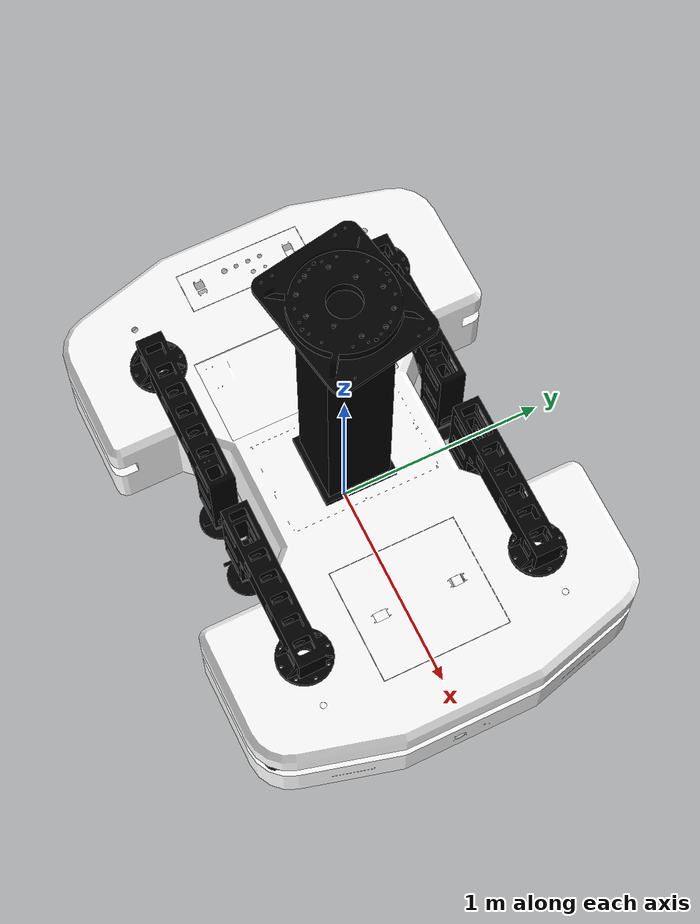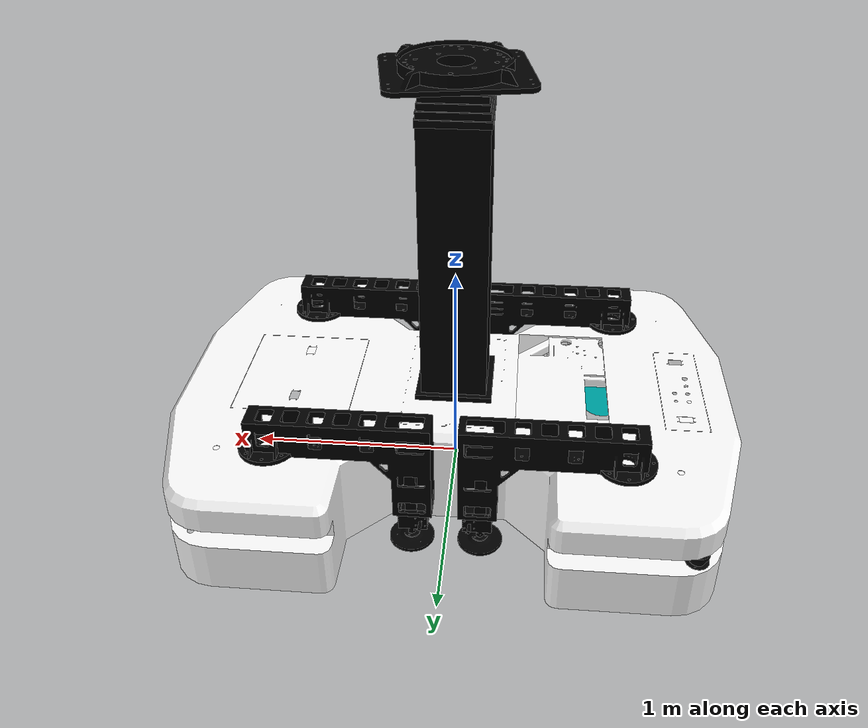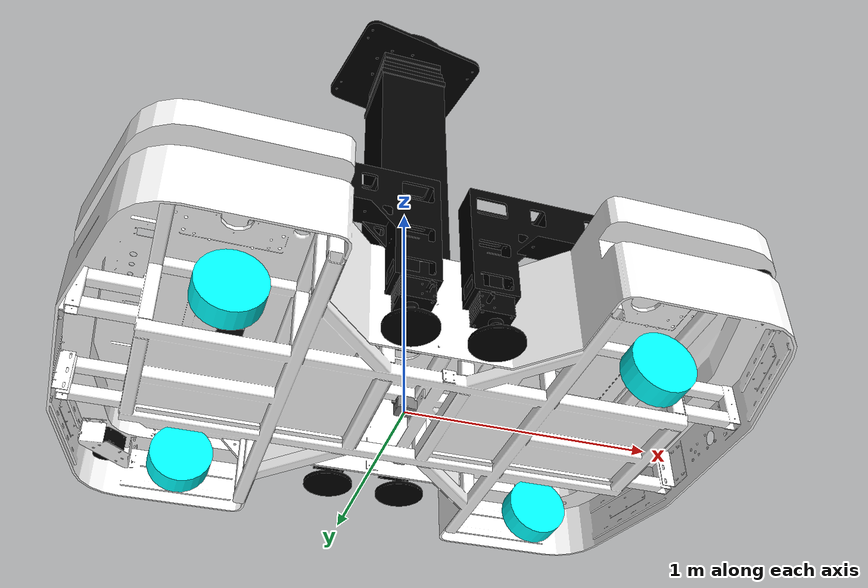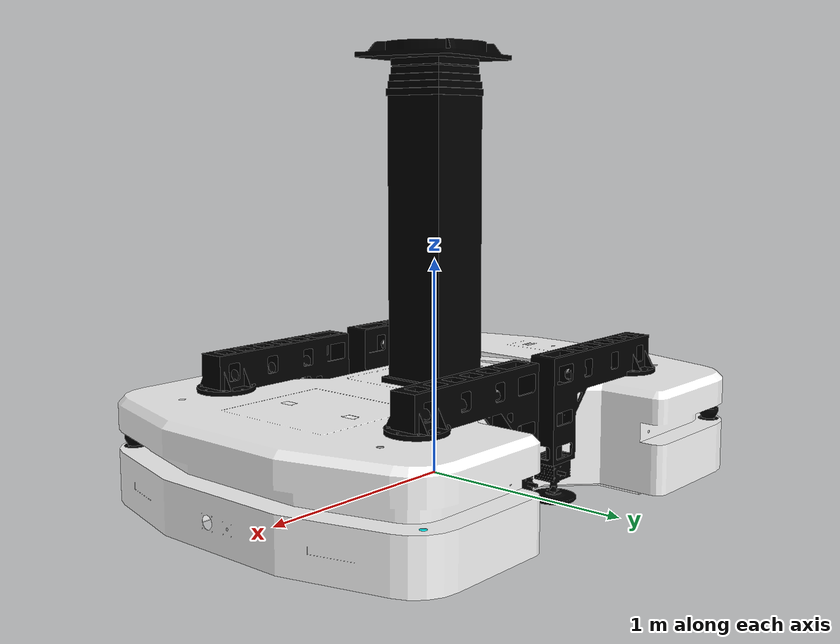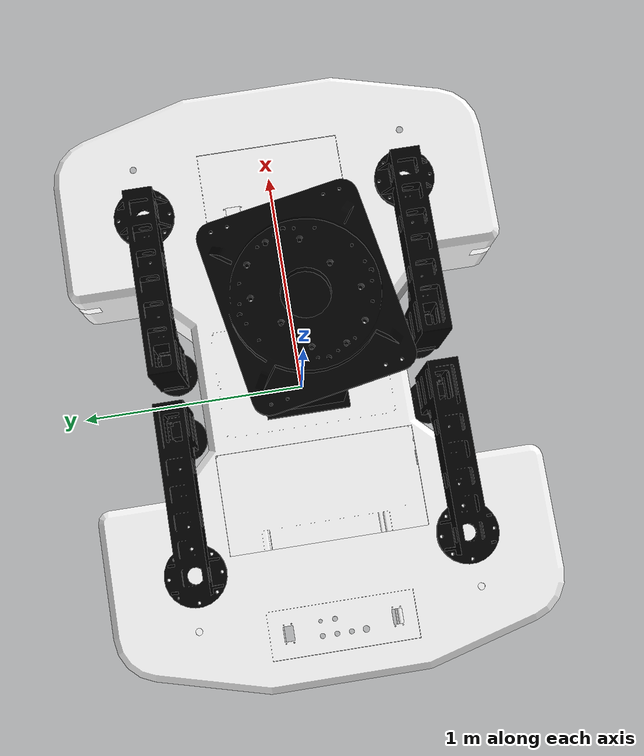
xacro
<?xml version="1.0"?>

<robot name="agv" xmlns:xacro="http://ros.org/wiki/xacro" >

    <xacro:include filename="$(find lunarPrinter)/urdf/agv/agv.gazebo.xacro" />

    <!-- 构建车体 -->
    <link name="agv_base_link">
        <inertial>
            <origin xyz="-0.0149529928295683 -4.94322252418334E-06 0.222184832094901" rpy="0 0 0" />
            <mass value="0.00519383596577394" />
            <inertia
        		ixx="0.00110386178303131"
                ixy="-0.000000315927825227971"
                ixz="-0.000000344955769853279"
                iyy="0.00133908938189479"
                iyz="0.00000000418959728531496"
                izz="0.239374249509396" />
        </inertial>

        <visual>
            <origin xyz="0 0 0" rpy="0 0 0" />
            <geometry>
        	    <mesh filename="package://lunarPrinter/meshes/agv/base_zhijia.STL" />
      		</geometry>
            <material name="While">
                <color rgba="1 1 1 0.95" />
            </material>
        </visual>

        <collision>
            <origin xyz="0 0 0" rpy="0 0 0" />
            <geometry>
                <mesh filename="package://lunarPrinter/meshes/agv/base_zhijia.STL" />

            </geometry>
        </collision>
    </link>

    <!-- 设置关节坐标系 -->

    <link name="agv_base_waike">
        <inertial>
            <origin xyz="-0.0149529928295683 -4.94322252418334E-06 0.222184832094901" rpy="0 0 0" />
            <mass value="0.001" />
            <inertia
        		ixx="0.0001" ixy="0" ixz="0" iyy="0.0001" iyz="0" izz="0.001" />
        </inertial>

        <visual>
            <origin xyz="0 0 0" rpy="0 0 0" />
            <geometry>
        	    <mesh filename="package://lunarPrinter/meshes/agv/base_waike.STL" />
      		</geometry>
            <material name="While">
                <color rgba="1 1 1 0.95" />
            </material>
        </visual>

        <collision>
            <origin xyz="0 0 0" rpy="0 0 0" />
            <geometry>
                <mesh filename="package://lunarPrinter/meshes/agv/base_waike.STL" />

            </geometry>
        </collision>
    </link>

    <!-- 设置关节坐标系 -->
    <joint name="agv_base_waike_joint" type="fixed">
        <parent link="agv_base_link" />
        <child link="agv_base_waike" />
        <origin rpy="0 0 0" xyz="0 0 0" />
    </joint>

    <!--构建车轮-->

    <!--舵轮基座-->
    <link name="steering_1_link">
        <inertial>
      		<origin xyz="0 0 0" rpy="0 0 0" />
      		<mass value="0.1" />
      		<inertia ixx="0.0001" ixy="0" ixz="0" iyy="0.0001" iyz="0" izz="0.001" />
    	</inertial>
    </link>
    <joint name="steering_1_joint" type="revolute">
        <origin xyz="0.762 0.56625 -0.01942" rpy="0 0 0" />
        <parent link="agv_base_link" />
        <child link="steering_1_link" />
        <axis xyz="0 0 1" />
        <limit lower="-3.14159265" upper="3.14159265" effort="5" velocity="1.5708" />
    </joint>

    <link name="steering_2_link">
        <inertial>
      		<origin xyz="0 0 0" rpy="0 0 0" />
      		<mass value="0.1" />
      		<inertia ixx="0.0001" ixy="0" ixz="0" iyy="0.0001" iyz="0" izz="0.001" />
    	</inertial>
    </link>
    <joint name="steering_2_joint" type="revolute">
        <origin xyz="0.762 -0.56625 -0.01942" rpy="0 0 0" />
        <parent link="agv_base_link" />
        <child link="steering_2_link" />
        <axis xyz="0 0 1" />
        <limit lower="-3.14159265" upper="3.14159265" effort="5" velocity="1.5708" />
    </joint>

    <link name="steering_3_link">
        <inertial>
      		<origin xyz="0 0 0" rpy="0 0 0" />
      		<mass value="0.1" />
      		<inertia ixx="0.0001" ixy="0" ixz="0" iyy="0.0001" iyz="0" izz="0.001" />
    	</inertial>
    </link>
    <joint name="steering_3_joint" type="revolute">
        <origin xyz="-0.762 0.56625 -0.01942" rpy="0 0 0" />
        <parent link="agv_base_link" />
        <child link="steering_3_link" />
        <axis xyz="0 0 1" />
        <limit lower="-3.14159265" upper="3.14159265" effort="5" velocity="1.5708" />
    </joint>

    <link name="steering_4_link">
        <inertial>
      		<origin xyz="0 0 0" rpy="0 0 0" />
      		<mass value="0.1" />
      		<inertia ixx="0.0001" ixy="0" ixz="0" iyy="0.0001" iyz="0" izz="0.001" />
    	</inertial>
    </link>
    <joint name="steering_4_joint" type="revolute">
        <origin xyz="-0.762 -0.56625 -0.01942" rpy="0 0 0" />
        <parent link="agv_base_link" />
        <child link="steering_4_link" />
        <axis xyz="0 0 1" />
        <limit lower="-3.14159265" upper="3.14159265" effort="5" velocity="1.5708" />
    </joint>

    <!-- 构建左前轮 -->
    <link name="front_left_wheel_link">
        <inertial>
      		<origin xyz="0 0 0" rpy="0 0 0" />
      		<mass value="1" />
      		<inertia ixx="0.0001" ixy="0" ixz="0" iyy="0.0001" iyz="0" izz="0.001" />
    	</inertial>

        <visual>
            <origin xyz="0 0 0" rpy="0 0 0" />
            <geometry>
                <cylinder length="0.1" radius="0.125" />
            </geometry>
            <material name="Cyan">
                <color rgba="0 1 1 0.95" />
            </material>
        </visual>

        <collision>
            <origin xyz="0 0 0" rpy="0 0 0" />
            <geometry>
                <cylinder length="0.1" radius="0.125" />
            </geometry>
        </collision>
    </link>

    <!-- 左前轮关节坐标系 -->
    <joint name="wheel_1_joint" type="continuous">
        <origin xyz="0 0 0" rpy="-1.5708 0 0" />
        <parent link="steering_1_link" />
        <child link="front_left_wheel_link" />
        <axis xyz="0 0 1" />
    </joint>

    <!-- 构建右前轮 -->
    <link name="front_right_wheel_link">
        <inertial>
      		<origin xyz="0 0 0" rpy="0 0 0" />
      		<mass value="1" />
      		<inertia ixx="0.0001" ixy="0" ixz="0" iyy="0.0001" iyz="0" izz="0.001" />
    	</inertial>

        <visual>
            <origin xyz="0 0 0" rpy="0 0 0" />
            <geometry>
                <cylinder length="0.1" radius="0.125" />
            </geometry>
            <material name="Cyan">
                <color rgba="0 1 1 0.95" />
            </material>
        </visual>

        <collision>
            <origin xyz="0 0 0" rpy="0 0 0" />
            <geometry>
                <cylinder length="0.1" radius="0.125" />
            </geometry>
        </collision>
    </link>

    <!-- 右前轮关节坐标系 -->
    <joint name="wheel_2_joint" type="continuous">
        <origin xyz="0 0 0" rpy="1.5708 0 0" />
        <parent link="steering_2_link" />
        <child link="front_right_wheel_link" />
        <axis xyz="0 0 1" />
    </joint>

    <!-- 构建左后轮 -->
    <link name="back_left_wheel_link">
        <inertial>
      		<origin xyz="0 0 0" rpy="0 0 0" />
      		<mass value="1" />
      		<inertia ixx="0.0001" ixy="0" ixz="0" iyy="0.0001" iyz="0" izz="0.001" />
    	</inertial>

        <visual>
            <origin xyz="0 0 0" rpy="0 0 0" />
            <geometry>
                <cylinder length="0.1" radius="0.125" />
            </geometry>
            <material name="Cyan">
                <color rgba="0 1 1 0.95" />
            </material>
        </visual>

        <collision>
            <origin xyz="0 0 0" rpy="0 0 0" />
            <geometry>
                <cylinder length="0.1" radius="0.125" />
            </geometry>
        </collision>
    </link>

    <!-- 左后轮关节坐标系 -->
    <joint name="wheel_3_joint" type="continuous">
        <origin xyz="0 0 0" rpy="-1.5708 0 0" />
        <parent link="steering_3_link" />
        <child link="back_left_wheel_link" />
        <axis xyz="0 0 1" />
    </joint>

    <!-- 构建右后轮 -->
    <link name="back_right_wheel_link">
        <inertial>
      		<origin xyz="0 0 0" rpy="0 0 0" />
      		<mass value="1" />
      		<inertia ixx="0.0001" ixy="0" ixz="0" iyy="0.0001" iyz="0" izz="0.001" />
    	</inertial>

        <visual>
            <origin xyz="0 0 0" rpy="0 0 0" />
            <geometry>
                <cylinder length="0.1" radius="0.125" />
            </geometry>
            <material name="Cyan">
                <color rgba="0 1 1 0.95" />
            </material>
        </visual>

        <collision>
            <origin xyz="0 0 0" rpy="0 0 0" />
            <geometry>
                <cylinder length="0.1" radius="0.125" />
            </geometry>
        </collision>
    </link>

    <!-- 左后轮关节坐标系 -->
    <joint name="wheel_4_joint" type="continuous">
        <origin xyz="0 0 0" rpy="1.5708 0 0" />
        <parent link="steering_4_link" />
        <child link="back_right_wheel_link" />
        <axis xyz="0 0 1" />
    </joint>

    <!-- 构建前雷达-->
    <link name="front_lidar_link">
        <inertial>
      		<origin xyz="0 0 0" rpy="0 0 0" />
      		<mass value="1" />
      		<inertia ixx="0.0001" ixy="0" ixz="0" iyy="0.0001" iyz="0" izz="0.001" />
    	</inertial>

        <visual>
            <origin xyz="0 0 0" rpy="0 0 0" />
            <geometry>
                <mesh
                filename="package://lunarPrinter/meshes/agv/front_lidar_link.STL" />
            </geometry>
            <material name="Black">
                <color rgba="0 0 0 0.95" />
            </material>
        </visual>

        <collision>
            <origin xyz="0 0 0" rpy="0 0 0" />
            <geometry>
                <mesh
                filename="package://lunarPrinter/meshes/agv/front_lidar_link.STL" />
            </geometry>
        </collision>
    </link>

    <!-- 前雷达坐标系 -->
    <joint name="front_lidar_joint" type="fixed">
        <origin xyz="1.0527 -0.84887 0.24279" rpy="0 0 0" />
        <parent link="agv_base_link" />
        <child link="front_lidar_link" />
        <axis xyz="0 0 1" />
    </joint>

    <!-- 构建后雷达-->
    <link name="back_lidar_link">
        <inertial>
      		<origin xyz="0 0 0" rpy="0 0 0" />
      		<mass value="1" />
      		<inertia ixx="0.0001" ixy="0" ixz="0" iyy="0.0001" iyz="0" izz="0.001" />
    	</inertial>

        <visual>
            <origin xyz="0 0 0" rpy="0 0 0" />
            <geometry>
                <mesh
                filename="package://lunarPrinter/meshes/agv/back_lidar_link.STL" />
            </geometry>
            <material name="Black">
                <color rgba="0 0 0 0.95" />
            </material>
        </visual>

        <collision>
            <origin xyz="0 0 0" rpy="0 0 0" />
            <geometry>
                <mesh
                filename="package://lunarPrinter/meshes/agv/back_lidar_link.STL" />
            </geometry>
        </collision>
    </link>

    <!-- 后雷达坐标系 -->
    <joint name="back_lidar_joint" type="fixed">
        <origin xyz="-1.0527 0.84887 0.24279" rpy="0 0 -3.1416" />
        <parent link="agv_base_link" />
        <child link="back_lidar_link" />
        <axis xyz="0 0 1" />
    </joint>

    <!-- 构建二维码相机-->
    <link name="code_camera_link">
        <inertial>
      		<origin xyz="0 0 0" rpy="0 0 0" />
      		<mass value="1" />
      		<inertia ixx="0.0001" ixy="0" ixz="0" iyy="0.0001" iyz="0" izz="0.001" />
    	</inertial>

        <visual>
            <origin xyz="0 0 0" rpy="0 0 0" />
            <geometry>
                <mesh
                filename="package://lunarPrinter/meshes/agv/code_camera_link.STL" />
            </geometry>
            <material name="Gray">
                <color rgba="0.5 0.5 0.5 0.95" />
            </material>
        </visual>

        <collision>
            <origin xyz="0 0 0" rpy="0 0 0" />
            <geometry>
                <mesh
                filename="package://lunarPrinter/meshes/agv/code_camera_link.STL" />
            </geometry>
        </collision>
    </link>

    <!-- 二维码相机坐标系 -->
    <joint name="code_camera_joint" type="fixed">
        <origin xyz="0 0 0" rpy="3.1416 0 -1.5708" />
        <parent link="agv_base_link" />
        <child link="code_camera_link" />
        <axis xyz="0 0 1" />
    </joint>

    <!-- 构建支架-->

    <!--左前腿-->
    <link name="leg_1_link">
        <inertial>
      		<origin xyz="0 0 0" rpy="0 0 0" />
      		<mass value="1" />
      		<inertia ixx="0.0001" ixy="0" ixz="0" iyy="0.0001" iyz="0" izz="0.001" />
    	</inertial>

        <visual>
            <origin xyz="0 0 0" rpy="0 0 0" />
            <geometry>
                <mesh
                filename="package://lunarPrinter/meshes/agv/front_left_leg_link.STL" />
            </geometry>
            <material name="Black">
                <color rgba="0 0 0 0.95" />
            </material>
        </visual>

        <collision>
            <origin xyz="0 0 0" rpy="0 0 0" />
            <geometry>
                <mesh
                filename="package://lunarPrinter/meshes/agv/front_left_leg_link.STL" />
            </geometry>
        </collision>
    </link>

    <joint name="leg_1_joint" type="revolute">
        <origin xyz="0.765 0.565 0.44022" rpy="0 0 3.1416" />
        <parent link="agv_base_link" />
        <child link="leg_1_link" />
        <axis xyz="0 0 -1" />
        <limit lower="0" upper="1.5708" effort="100" velocity="1.5708" />
    </joint>

    <!--左前足-->
    <link name="foot_1_link">
        <inertial>
      		<origin xyz="0 0 0" rpy="0 0 0" />
      		<mass value="3" />
      		<inertia ixx="0.0001" ixy="0" ixz="0" iyy="0.0001" iyz="0" izz="0.001" />
    	</inertial>

        <visual>
            <origin xyz="0 0 0" rpy="0 0 0" />
            <geometry>
                <mesh
                filename="package://lunarPrinter/meshes/agv/foot_1_link.STL" />
            </geometry>
            <material name="Black">
                <color rgba="0 0 0 0.95" />
            </material>
        </visual>

        <collision>
            <origin xyz="0 0 0" rpy="0 0 0" />
            <geometry>
                <mesh
                filename="package://lunarPrinter/meshes/agv/foot_1_link.STL" />
            </geometry>
        </collision>
    </link>

    <joint name="foot_1_joint" type="prismatic">
        <origin xyz="0.6115 0 -0.4835" rpy="-3.1416 0 1.5708" />
        <parent link="leg_1_link" />
        <child link="foot_1_link" />
        <axis xyz="0 0 1" />
        <limit lower="0" upper="0.15" effort="30" velocity="0.5" />
    </joint>

    <!--右前腿-->
    <link name="leg_2_link">
        <inertial>
      		<origin xyz="0 0 0" rpy="0 0 0" />
      		<mass value="1" />
      		<inertia ixx="0.0001" ixy="0" ixz="0" iyy="0.0001" iyz="0" izz="0.001" />
    	</inertial>

        <visual>
            <origin xyz="0 0 0" rpy="0 0 0" />
            <geometry>
                <mesh
                filename="package://lunarPrinter/meshes/agv/front_right_leg_link.STL" />
            </geometry>
            <material name="Black">
                <color rgba="0 0 0 0.95" />
            </material>
        </visual>

        <collision>
            <origin xyz="0 0 0" rpy="0 0 0" />
            <geometry>
                <mesh
                filename="package://lunarPrinter/meshes/agv/front_right_leg_link.STL" />
            </geometry>
        </collision>
    </link>

    <joint name="leg_2_joint" type="revolute">
        <origin xyz="0.765 -0.565 0.44022" rpy="0 0 3.1416" />
        <parent link="agv_base_link" />
        <child link="leg_2_link" />
        <axis xyz="0 0 1" />
        <limit lower="0" upper="1.5708" effort="100" velocity="1.5708" />
    </joint>

    <!--右前足-->
    <link name="foot_2_link">
        <inertial>
      		<origin xyz="0 0 0" rpy="0 0 0" />
      		<mass value="3" />
      		<inertia ixx="0.0001" ixy="0" ixz="0" iyy="0.0001" iyz="0" izz="0.001" />
    	</inertial>

        <visual>
            <origin xyz="0 0 0" rpy="0 0 0" />
            <geometry>
                <mesh
                filename="package://lunarPrinter/meshes/agv/foot_2_link.STL" />
            </geometry>
            <material name="Black">
                <color rgba="0 0 0 0.95" />
            </material>
        </visual>

        <collision>
            <origin xyz="0 0 0" rpy="0 0 0" />
            <geometry>
                <mesh
                filename="package://lunarPrinter/meshes/agv/foot_2_link.STL" />
            </geometry>
        </collision>
    </link>

    <joint name="foot_2_joint" type="prismatic">
        <origin xyz="0.6115 0 -0.4835" rpy="3.1416 0 1.5708" />
        <parent link="leg_2_link" />
        <child link="foot_2_link" />
        <axis xyz="0 0 1" />
        <limit lower="0" upper="0.15" effort="30" velocity="0.5" />
    </joint>

    <!--左后腿-->
    <link name="leg_3_link">
        <inertial>
      		<origin xyz="0 0 0" rpy="0 0 0" />
      		<mass value="1" />
      		<inertia ixx="0.0001" ixy="0" ixz="0" iyy="0.0001" iyz="0" izz="0.001" />
    	</inertial>

        <visual>
            <origin xyz="0 0 0" rpy="0 0 0" />
            <geometry>
                <mesh
                filename="package://lunarPrinter/meshes/agv/back_left_leg_link.STL" />
            </geometry>
            <material name="Black">
                <color rgba="0 0 0 0.95" />
            </material>
        </visual>

        <collision>
            <origin xyz="0 0 0" rpy="0 0 0" />
            <geometry>
                <mesh
                filename="package://lunarPrinter/meshes/agv/back_left_leg_link.STL" />
            </geometry>
        </collision>
    </link>

    <joint name="leg_3_joint" type="revolute">
        <origin xyz="-0.765 0.565 0.44022" rpy="0 0 0" />
        <parent link="agv_base_link" />
        <child link="leg_3_link" />
        <axis xyz="0 0 1" />
        <limit lower="0" upper="1.5708" effort="100" velocity="1.5708" />
    </joint>

    <!--左后足-->
    <link name="foot_3_link">
        <inertial>
      		<origin xyz="0 0 0" rpy="0 0 0" />
      		<mass value="3" />
      		<inertia ixx="0.0001" ixy="0" ixz="0" iyy="0.0001" iyz="0" izz="0.001" />
    	</inertial>

        <visual>
            <origin xyz="0 0 0" rpy="0 0 0" />
            <geometry>
                <mesh
                filename="package://lunarPrinter/meshes/agv/foot_3_link.STL" />
            </geometry>
            <material name="Black">
                <color rgba="0 0 0 0.95" />
            </material>
        </visual>

        <collision>
            <origin xyz="0 0 0" rpy="0 0 0" />
            <geometry>
                <mesh
                filename="package://lunarPrinter/meshes/agv/foot_3_link.STL" />
            </geometry>
        </collision>
    </link>

    <joint name="foot_3_joint" type="prismatic">
        <origin xyz="0.6115 0 -0.4835" rpy="-3.1416 0 -1.5708" />
        <parent link="leg_3_link" />
        <child link="foot_3_link" />
        <axis xyz="0 0 1" />
        <limit lower="0" upper="0.15" effort="30" velocity="0.5" />
    </joint>

    <!--右后腿-->
    <link name="leg_4_link">
        <inertial>
      		<origin xyz="0 0 0" rpy="0 0 0" />
      		<mass value="1" />
      		<inertia ixx="0.0001" ixy="0" ixz="0" iyy="0.0001" iyz="0" izz="0.001" />
    	</inertial>

        <visual>
            <origin xyz="0 0 0" rpy="0 0 0" />
            <geometry>
                <mesh
                filename="package://lunarPrinter/meshes/agv/back_right_leg_link.STL" />
            </geometry>
            <material name="Black">
                <color rgba="0 0 0 0.95" />
            </material>
        </visual>

        <collision>
            <origin xyz="0 0 0" rpy="0 0 0" />
            <geometry>
                <mesh
                filename="package://lunarPrinter/meshes/agv/back_right_leg_link.STL" />
            </geometry>
        </collision>
    </link>

    <joint name="leg_4_joint" type="revolute">
        <origin xyz="-0.765 -0.565 0.44022" rpy="0 0 0" />
        <parent link="agv_base_link" />
        <child link="leg_4_link" />
        <axis xyz="0 0 -1" />
        <limit lower="0" upper="1.5708" effort="100" velocity="1.5708" />
    </joint>

    <!--左后足-->
    <link name="foot_4_link">
        <inertial>
      		<origin xyz="0 0 0" rpy="0 0 0" />
      		<mass value="3" />
      		<inertia ixx="0.0001" ixy="0" ixz="0" iyy="0.0001" iyz="0" izz="0.001" />
    	</inertial>

        <visual>
            <origin xyz="0 0 0" rpy="0 0 0" />
            <geometry>
                <mesh
                filename="package://lunarPrinter/meshes/agv/foot_4_link.STL" />
            </geometry>
            <material name="Black">
                <color rgba="0 0 0 0.95" />
            </material>
        </visual>

        <collision>
            <origin xyz="0 0 0" rpy="0 0 0" />
            <geometry>
                <mesh
                filename="package://lunarPrinter/meshes/agv/foot_4_link.STL" />
            </geometry>
        </collision>
    </link>

    <joint name="foot_4_joint" type="prismatic">
        <origin xyz="0.6115 0 -0.4835" rpy="3.1416 0 -1.5708" />
        <parent link="leg_4_link" />
        <child link="foot_4_link" />
        <axis xyz="0 0 1" />
        <limit lower="0" upper="0.15" effort="30" velocity="0.5" />
    </joint>

    <!-- 构建机械臂支架-->
    <link name="arm_base_0_link">
        <inertial>
      		<origin xyz="0 0 0" rpy="0 0 0" />
      		<mass value="0.001" />
      		<inertia ixx="0.0001" ixy="0" ixz="0" iyy="0.0001" iyz="0" izz="0.001" />
    	</inertial>

        <visual>
            <origin xyz="0 0 -1.3332" rpy="0 0 0" />
            <geometry>
                <box size="0.35 0.35 0.05" />
            </geometry>
            <material name="Black">
                <color rgba="0 0 0 0.95" />
            </material>
        </visual>
        <visual>
            <origin xyz="0 0 -0.6666" rpy="0 0 0" />
            <geometry>
                <box size="0.3 0.3 1.3332" />
            </geometry>
            <material name="Black">
                <color rgba="0 0 0 0.95" />
            </material>
        </visual>
        <visual>
            <origin xyz="0 0 -0.015" rpy="0 0 0" />
            <geometry>
                <box size="0.31 0.31 0.03" />
            </geometry>
            <material name="Black">
                <color rgba="0 0 0 0.95" />
            </material>
        </visual>

    </link>

    <joint name="arm_base_0_joint" type="fixed">
        <origin xyz="0 0 1.76742" rpy="0 0 0" />
        <parent link="agv_base_link" />
        <child link="arm_base_0_link" />
        <axis xyz="0 0 1" />
    </joint>

    <link name="arm_base_1_link">
        <inertial>
      		<origin xyz="0 0 0" rpy="0 0 0" />
      		<mass value="0.001" />
      		<inertia ixx="0.0001" ixy="0" ixz="0" iyy="0.0001" iyz="0" izz="0.001" />
    	</inertial>

        <visual>
            <origin xyz="0 0 -0.6666" rpy="0 0 0" />
            <geometry>
                <box size="0.29 0.29 1.3332" />
            </geometry>
            <material name="Black">
                <color rgba="0 0 0 0.95" />
            </material>
        </visual>
        <visual>
            <origin xyz="0 0 -0.015" rpy="0 0 0" />
            <geometry>
                <box size="0.3 0.3 0.03" />
            </geometry>
            <material name="Black">
                <color rgba="0 0 0 0.95" />
            </material>
        </visual>

    </link>

    <joint name="arm_base_1_joint" type="prismatic">
        <origin xyz="0 0 0.032" rpy="0 0 0" />
        <parent link="arm_base_0_link" />
        <child link="arm_base_1_link" />
        <axis xyz="0 0 1" />
        <limit lower="0" upper="1" effort="1000" velocity="0.5" />
    </joint>

    <link name="arm_base_2_link">
        <inertial>
      		<origin xyz="0 0 0" rpy="0 0 0" />
      		<mass value="0.001" />
      		<inertia ixx="0.0001" ixy="0" ixz="0" iyy="0.0001" iyz="0" izz="0.001" />
    	</inertial>

        <visual>
            <origin xyz="0 0 -0.6666" rpy="0 0 0" />
            <geometry>
                <box size="0.28 0.28 1.3332" />
            </geometry>
            <material name="Black">
                <color rgba="0 0 0 0.95" />
            </material>
        </visual>
        <visual>
            <origin xyz="0 0 -0.015" rpy="0 0 0" />
            <geometry>
                <box size="0.29 0.29 0.03" />
            </geometry>
            <material name="Black">
                <color rgba="0 0 0 0.95" />
            </material>
        </visual>

    </link>

    <joint name="arm_base_2_joint" type="fixed">
        <origin xyz="0 0 0.032" rpy="0 0 0" />
        <parent link="arm_base_1_link" />
        <child link="arm_base_2_link" />
        <axis xyz="0 0 1" />
    </joint>

    <link name="arm_base_3_link">
        <inertial>
      		<origin xyz="0 0 0" rpy="0 0 0" />
      		<mass value="0.001" />
      		<inertia ixx="0.0001" ixy="0" ixz="0" iyy="0.0001" iyz="0" izz="0.001" />
    	</inertial>

        <visual>
            <origin xyz="0 0 -0.6666" rpy="0 0 0" />
            <geometry>
                <box size="0.27 0.27 1.3332" />
            </geometry>
            <material name="Black">
                <color rgba="0 0 0 0.95" />
            </material>
        </visual>
        <visual>
            <origin xyz="0 0 -0.015" rpy="0 0 0" />
            <geometry>
                <box size="0.28 0.28 0.03" />
            </geometry>
            <material name="Black">
                <color rgba="0 0 0 0.95" />
            </material>
        </visual>

    </link>

    <joint name="arm_base_3_joint" type="fixed">
        <origin xyz="0 0 0.032" rpy="0 0 0" />
        <parent link="arm_base_2_link" />
        <child link="arm_base_3_link" />
        <axis xyz="0 0 1" />
    </joint>

    <link name="arm_base_4_link">
        <inertial>
      		<origin xyz="0 0 0" rpy="0 0 0" />
      		<mass value="0.001" />
      		<inertia ixx="0.0001" ixy="0" ixz="0" iyy="0.0001" iyz="0" izz="0.001" />
    	</inertial>

        <visual>
            <origin xyz="0 0 0" rpy="0 0 0" />
            <geometry>
                <mesh
                filename="package://lunarPrinter/meshes/agv/arm_base_link.STL" />
            </geometry>
            <material name="Black">
                <color rgba="0 0 0 0.95" />
            </material>
        </visual>

        <visual>
            <origin xyz="0 0 -0.7216" rpy="0 0 0" />
            <geometry>
                <box size="0.27 0.27 1.3332" />
            </geometry>
            <material name="Black">
                <color rgba="0 0 0 0.95" />
            </material>
        </visual>

        <visual>
            <origin xyz="0 0 -0.0675" rpy="0 0 0" />
            <geometry>
                <box size="0.28 0.28 0.035" />
            </geometry>
            <material name="Black">
                <color rgba="0 0 0 0.95" />
            </material>
        </visual>

    </link>

    <joint name="arm_base_4_joint" type="fixed">
        <origin xyz="0 0 0.092" rpy="0 0 0" />
        <parent link="arm_base_3_link" />
        <child link="arm_base_4_link" />
        <axis xyz="0 0 1" />
    </joint>

</robot>
